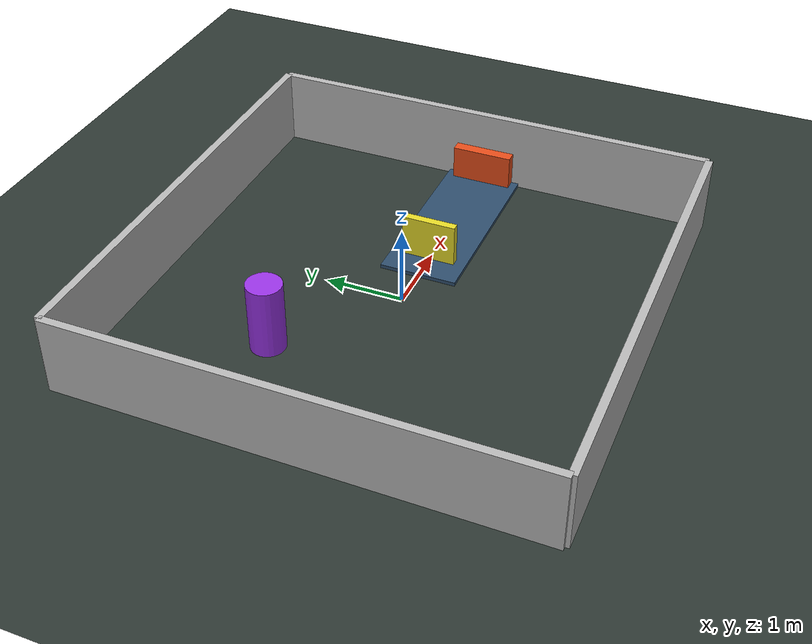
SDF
<?xml version="1.0"?>
<sdf version="1.9">
  <world name="rover_test">
    <physics name="1ms" type="ignored">
      <max_step_size>0.001</max_step_size>
      <real_time_factor>1.0</real_time_factor>
    </physics>
    <plugin filename="gz-sim-physics-system" name="gz::sim::systems::Physics"/>
    <plugin filename="gz-sim-user-commands-system" name="gz::sim::systems::UserCommands"/>
    <plugin filename="gz-sim-scene-broadcaster-system" name="gz::sim::systems::SceneBroadcaster"/>
    <plugin filename="gz-sim-sensors-system" name="gz::sim::systems::Sensors">
      <render_engine>ogre2</render_engine>
    </plugin>
    <plugin filename="gz-sim-contact-system" name="gz::sim::systems::Contact"/>

    <light type="directional" name="sun">
      <cast_shadows>true</cast_shadows>
      <pose>0 0 10 0 0 0</pose>
      <diffuse>0.8 0.8 0.8 1</diffuse>
      <specular>0.2 0.2 0.2 1</specular>
      <direction>-0.5 0.1 -0.9</direction>
    </light>

    <model name="ground_plane">
      <static>true</static>
      <link name="link">
        <collision name="collision">
          <geometry><plane><normal>0 0 1</normal><size>20 20</size></plane></geometry>
          <surface><friction><ode><mu>0.85</mu><mu2>0.80</mu2></ode></friction></surface>
        </collision>
        <visual name="visual">
          <geometry><plane><normal>0 0 1</normal><size>20 20</size></plane></geometry>
          <material><ambient>0.12 0.14 0.13 1</ambient><diffuse>0.18 0.22 0.20 1</diffuse></material>
        </visual>
      </link>
    </model>

    <model name="calibration_lane">
      <static>true</static><pose>2.0 0 0.025 0 0 0</pose>
      <link name="link">
        <collision name="collision"><geometry><box><size>3.0 1.0 0.05</size></box></geometry>
          <surface><friction><ode><mu>0.45</mu><mu2>0.40</mu2></ode></friction></surface>
        </collision>
        <visual name="visual"><geometry><box><size>3.0 1.0 0.05</size></box></geometry>
          <material><ambient>0.13 0.18 0.24 1</ambient><diffuse>0.18 0.30 0.42 1</diffuse></material>
        </visual>
      </link>
    </model>

    <model name="collision_box">
      <static>true</static><pose>3.0 0 0.25 0 0 0</pose>
      <link name="link">
        <collision name="collision"><geometry><box><size>0.4 0.8 0.5</size></box></geometry></collision>
        <visual name="visual"><geometry><box><size>0.4 0.8 0.5</size></box></geometry>
          <material><ambient>0.7 0.2 0.08 1</ambient><diffuse>0.9 0.3 0.1 1</diffuse></material>
        </visual>
      </link>
    </model>

    <!-- A narrow panel 0.80 m in front of the initial lidar pose. It is the
         deterministic target for the occlusion / obstacle smoke test. -->
    <model name="occlusion_panel">
      <static>true</static><pose>0.90 0 0.30 0 0 0</pose>
      <link name="link">
        <collision name="collision"><geometry><box><size>0.10 0.70 0.60</size></box></geometry></collision>
        <visual name="visual"><geometry><box><size>0.10 0.70 0.60</size></box></geometry>
          <material><ambient>0.65 0.65 0.10 1</ambient><diffuse>0.90 0.85 0.15 1</diffuse></material>
        </visual>
      </link>
    </model>

    <!-- Asymmetric room landmarks make scan matching and loop closure observable. -->
    <model name="north_wall"><static>true</static><pose>0 3.0 0.50 0 0 0</pose><link name="link"><collision name="collision"><geometry><box><size>6.0 0.10 1.0</size></box></geometry></collision><visual name="visual"><geometry><box><size>6.0 0.10 1.0</size></box></geometry></visual></link></model>
    <model name="south_wall"><static>true</static><pose>0 -3.0 0.50 0 0 0</pose><link name="link"><collision name="collision"><geometry><box><size>6.0 0.10 1.0</size></box></geometry></collision><visual name="visual"><geometry><box><size>6.0 0.10 1.0</size></box></geometry></visual></link></model>
    <model name="east_wall"><static>true</static><pose>3.0 0 0.50 0 0 0</pose><link name="link"><collision name="collision"><geometry><box><size>0.10 6.0 1.0</size></box></geometry></collision><visual name="visual"><geometry><box><size>0.10 6.0 1.0</size></box></geometry></visual></link></model>
    <model name="west_wall"><static>true</static><pose>-3.0 0 0.50 0 0 0</pose><link name="link"><collision name="collision"><geometry><box><size>0.10 6.0 1.0</size></box></geometry></collision><visual name="visual"><geometry><box><size>0.10 6.0 1.0</size></box></geometry></visual></link></model>
    <model name="landmark_column"><static>true</static><pose>-1.4 1.1 0.45 0 0 0</pose><link name="link"><collision name="collision"><geometry><cylinder><radius>0.22</radius><length>0.9</length></cylinder></geometry></collision><visual name="visual"><geometry><cylinder><radius>0.22</radius><length>0.9</length></cylinder></geometry><material><ambient>0.4 0.1 0.7 1</ambient><diffuse>0.6 0.2 0.9 1</diffuse></material></visual></link></model>
  </world>
</sdf>
